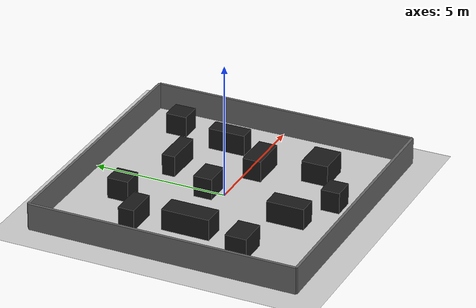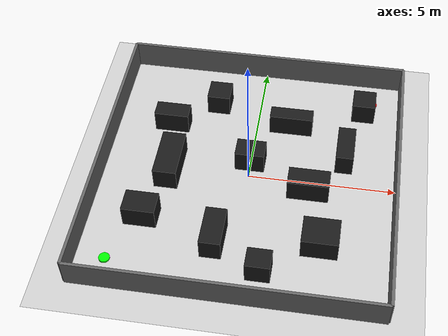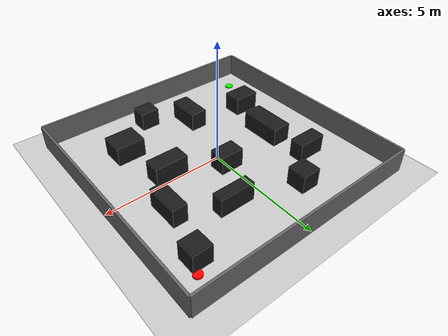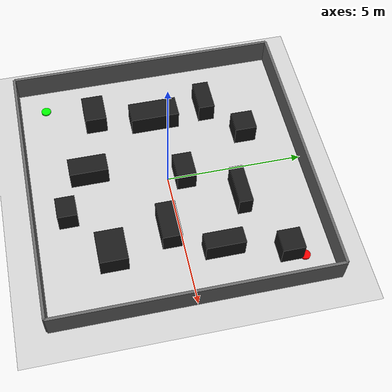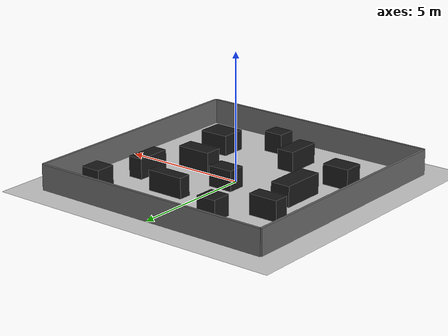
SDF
<?xml version="1.0" ?>
<sdf version="1.6">
  <world name="astar_mapping_test_world">

    <!-- Basic physics -->
    <physics name="default_physics" type="ode">
      <max_step_size>0.001</max_step_size>
      <real_time_factor>1.0</real_time_factor>
      <real_time_update_rate>1000</real_time_update_rate>
    </physics>

    <!-- Lighting -->
    <include>
      <uri>model://sun</uri>
    </include>

    <!-- Ground plane -->
    <include>
      <uri>model://ground_plane</uri>
    </include>

    <!-- Outer walls: 10 m x 10 m area -->
    <model name="wall_front">
      <static>true</static>
      <pose>0 5 0.5 0 0 0</pose>
      <link name="link">
        <collision name="collision">
          <geometry>
            <box>
              <size>10 0.1 1.0</size>
            </box>
          </geometry>
        </collision>
        <visual name="visual">
          <geometry>
            <box>
              <size>10 0.1 1.0</size>
            </box>
          </geometry>
          <material>
            <ambient>0.4 0.4 0.4 1</ambient>
            <diffuse>0.4 0.4 0.4 1</diffuse>
          </material>
        </visual>
      </link>
    </model>

    <model name="wall_back">
      <static>true</static>
      <pose>0 -5 0.5 0 0 0</pose>
      <link name="link">
        <collision name="collision">
          <geometry>
            <box>
              <size>10 0.1 1.0</size>
            </box>
          </geometry>
        </collision>
        <visual name="visual">
          <geometry>
            <box>
              <size>10 0.1 1.0</size>
            </box>
          </geometry>
          <material>
            <ambient>0.4 0.4 0.4 1</ambient>
            <diffuse>0.4 0.4 0.4 1</diffuse>
          </material>
        </visual>
      </link>
    </model>

    <model name="wall_left">
      <static>true</static>
      <pose>-5 0 0.5 0 0 0</pose>
      <link name="link">
        <collision name="collision">
          <geometry>
            <box>
              <size>0.1 10 1.0</size>
            </box>
          </geometry>
        </collision>
        <visual name="visual">
          <geometry>
            <box>
              <size>0.1 10 1.0</size>
            </box>
          </geometry>
          <material>
            <ambient>0.4 0.4 0.4 1</ambient>
            <diffuse>0.4 0.4 0.4 1</diffuse>
          </material>
        </visual>
      </link>
    </model>

    <model name="wall_right">
      <static>true</static>
      <pose>5 0 0.5 0 0 0</pose>
      <link name="link">
        <collision name="collision">
          <geometry>
            <box>
              <size>0.1 10 1.0</size>
            </box>
          </geometry>
        </collision>
        <visual name="visual">
          <geometry>
            <box>
              <size>0.1 10 1.0</size>
            </box>
          </geometry>
          <material>
            <ambient>0.4 0.4 0.4 1</ambient>
            <diffuse>0.4 0.4 0.4 1</diffuse>
          </material>
        </visual>
      </link>
    </model>

    <!-- Static obstacle boxes -->

    <model name="obs_01">
      <static>true</static>
      <pose>-3.0 2.0 0.4 0 0 0</pose>
      <link name="link">
        <collision name="collision">
          <geometry>
            <box>
              <size>1.2 0.6 0.8</size>
            </box>
          </geometry>
        </collision>
        <visual name="visual">
          <geometry>
            <box>
              <size>1.2 0.6 0.8</size>
            </box>
          </geometry>
          <material>
            <ambient>0.1 0.1 0.1 1</ambient>
            <diffuse>0.1 0.1 0.1 1</diffuse>
          </material>
        </visual>
      </link>
    </model>

    <model name="obs_02">
      <static>true</static>
      <pose>-1.5 3.2 0.4 0 0 0</pose>
      <link name="link">
        <collision name="collision">
          <geometry>
            <box>
              <size>0.8 0.8 0.8</size>
            </box>
          </geometry>
        </collision>
        <visual name="visual">
          <geometry>
            <box>
              <size>0.8 0.8 0.8</size>
            </box>
          </geometry>
          <material>
            <ambient>0.1 0.1 0.1 1</ambient>
            <diffuse>0.1 0.1 0.1 1</diffuse>
          </material>
        </visual>
      </link>
    </model>

    <model name="obs_03">
      <static>true</static>
      <pose>1.2 2.4 0.4 0 0 0</pose>
      <link name="link">
        <collision name="collision">
          <geometry>
            <box>
              <size>1.5 0.5 0.8</size>
            </box>
          </geometry>
        </collision>
        <visual name="visual">
          <geometry>
            <box>
              <size>1.5 0.5 0.8</size>
            </box>
          </geometry>
          <material>
            <ambient>0.1 0.1 0.1 1</ambient>
            <diffuse>0.1 0.1 0.1 1</diffuse>
          </material>
        </visual>
      </link>
    </model>

    <model name="obs_04">
      <static>true</static>
      <pose>3.2 1.3 0.4 0 0 0</pose>
      <link name="link">
        <collision name="collision">
          <geometry>
            <box>
              <size>0.6 1.4 0.8</size>
            </box>
          </geometry>
        </collision>
        <visual name="visual">
          <geometry>
            <box>
              <size>0.6 1.4 0.8</size>
            </box>
          </geometry>
          <material>
            <ambient>0.1 0.1 0.1 1</ambient>
            <diffuse>0.1 0.1 0.1 1</diffuse>
          </material>
        </visual>
      </link>
    </model>

    <model name="obs_05">
      <static>true</static>
      <pose>-2.7 0.0 0.4 0 0 0</pose>
      <link name="link">
        <collision name="collision">
          <geometry>
            <box>
              <size>0.8 1.8 0.8</size>
            </box>
          </geometry>
        </collision>
        <visual name="visual">
          <geometry>
            <box>
              <size>0.8 1.8 0.8</size>
            </box>
          </geometry>
          <material>
            <ambient>0.1 0.1 0.1 1</ambient>
            <diffuse>0.1 0.1 0.1 1</diffuse>
          </material>
        </visual>
      </link>
    </model>

    <model name="obs_06">
      <static>true</static>
      <pose>0.0 0.6 0.4 0 0 0</pose>
      <link name="link">
        <collision name="collision">
          <geometry>
            <box>
              <size>1.0 0.7 0.8</size>
            </box>
          </geometry>
        </collision>
        <visual name="visual">
          <geometry>
            <box>
              <size>1.0 0.7 0.8</size>
            </box>
          </geometry>
          <material>
            <ambient>0.1 0.1 0.1 1</ambient>
            <diffuse>0.1 0.1 0.1 1</diffuse>
          </material>
        </visual>
      </link>
    </model>

    <model name="obs_07">
      <static>true</static>
      <pose>2.1 -0.4 0.4 0 0 0</pose>
      <link name="link">
        <collision name="collision">
          <geometry>
            <box>
              <size>1.4 0.7 0.8</size>
            </box>
          </geometry>
        </collision>
        <visual name="visual">
          <geometry>
            <box>
              <size>1.4 0.7 0.8</size>
            </box>
          </geometry>
          <material>
            <ambient>0.1 0.1 0.1 1</ambient>
            <diffuse>0.1 0.1 0.1 1</diffuse>
          </material>
        </visual>
      </link>
    </model>

    <model name="obs_08">
      <static>true</static>
      <pose>-3.2 -2.2 0.4 0 0 0</pose>
      <link name="link">
        <collision name="collision">
          <geometry>
            <box>
              <size>1.1 0.8 0.8</size>
            </box>
          </geometry>
        </collision>
        <visual name="visual">
          <geometry>
            <box>
              <size>1.1 0.8 0.8</size>
            </box>
          </geometry>
          <material>
            <ambient>0.1 0.1 0.1 1</ambient>
            <diffuse>0.1 0.1 0.1 1</diffuse>
          </material>
        </visual>
      </link>
    </model>

    <model name="obs_09">
      <static>true</static>
      <pose>-0.7 -2.8 0.4 0 0 0</pose>
      <link name="link">
        <collision name="collision">
          <geometry>
            <box>
              <size>0.7 1.4 0.8</size>
            </box>
          </geometry>
        </collision>
        <visual name="visual">
          <geometry>
            <box>
              <size>0.7 1.4 0.8</size>
            </box>
          </geometry>
          <material>
            <ambient>0.1 0.1 0.1 1</ambient>
            <diffuse>0.1 0.1 0.1 1</diffuse>
          </material>
        </visual>
      </link>
    </model>

    <model name="obs_10">
      <static>true</static>
      <pose>2.7 -2.5 0.4 0 0 0</pose>
      <link name="link">
        <collision name="collision">
          <geometry>
            <box>
              <size>1.2 1.0 0.8</size>
            </box>
          </geometry>
        </collision>
        <visual name="visual">
          <geometry>
            <box>
              <size>1.2 1.0 0.8</size>
            </box>
          </geometry>
          <material>
            <ambient>0.1 0.1 0.1 1</ambient>
            <diffuse>0.1 0.1 0.1 1</diffuse>
          </material>
        </visual>
      </link>
    </model>

    <model name="obs_11">
      <static>true</static>
      <pose>0.9 -3.8 0.4 0 0 0</pose>
      <link name="link">
        <collision name="collision">
          <geometry>
            <box>
              <size>0.8 0.7 0.8</size>
            </box>
          </geometry>
        </collision>
        <visual name="visual">
          <geometry>
            <box>
              <size>0.8 0.7 0.8</size>
            </box>
          </geometry>
          <material>
            <ambient>0.1 0.1 0.1 1</ambient>
            <diffuse>0.1 0.1 0.1 1</diffuse>
          </material>
        </visual>
      </link>
    </model>

    <model name="obs_12">
      <static>true</static>
      <pose>3.7 3.5 0.4 0 0 0</pose>
      <link name="link">
        <collision name="collision">
          <geometry>
            <box>
              <size>0.8 0.8 0.8</size>
            </box>
          </geometry>
        </collision>
        <visual name="visual">
          <geometry>
            <box>
              <size>0.8 0.8 0.8</size>
            </box>
          </geometry>
          <material>
            <ambient>0.1 0.1 0.1 1</ambient>
            <diffuse>0.1 0.1 0.1 1</diffuse>
          </material>
        </visual>
      </link>
    </model>

    <!-- Suggested start/goal markers, visual only -->
    <model name="start_marker">
      <static>true</static>
      <pose>-4 -4 0.03 0 0 0</pose>
      <link name="link">
        <visual name="visual">
          <geometry>
            <cylinder>
              <radius>0.18</radius>
              <length>0.06</length>
            </cylinder>
          </geometry>
          <material>
            <ambient>0 1 0 1</ambient>
            <diffuse>0 1 0 1</diffuse>
          </material>
        </visual>
      </link>
    </model>

    <model name="goal_marker">
      <static>true</static>
      <pose>4 4 0.03 0 0 0</pose>
      <link name="link">
        <visual name="visual">
          <geometry>
            <cylinder>
              <radius>0.18</radius>
              <length>0.06</length>
            </cylinder>
          </geometry>
          <material>
            <ambient>1 0 0 1</ambient>
            <diffuse>1 0 0 1</diffuse>
          </material>
        </visual>
      </link>
    </model>

  </world>
</sdf>
